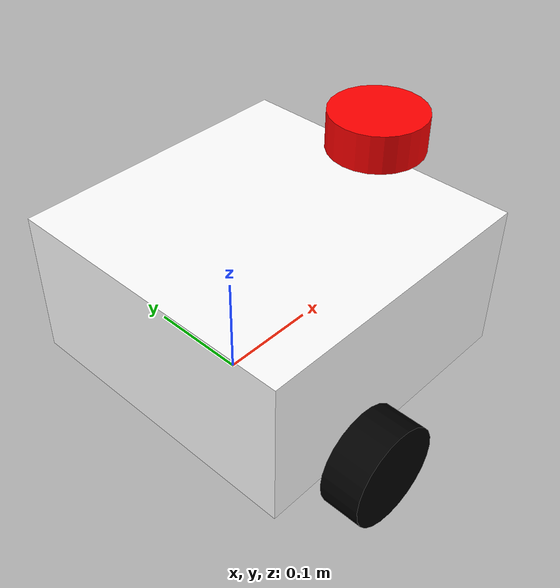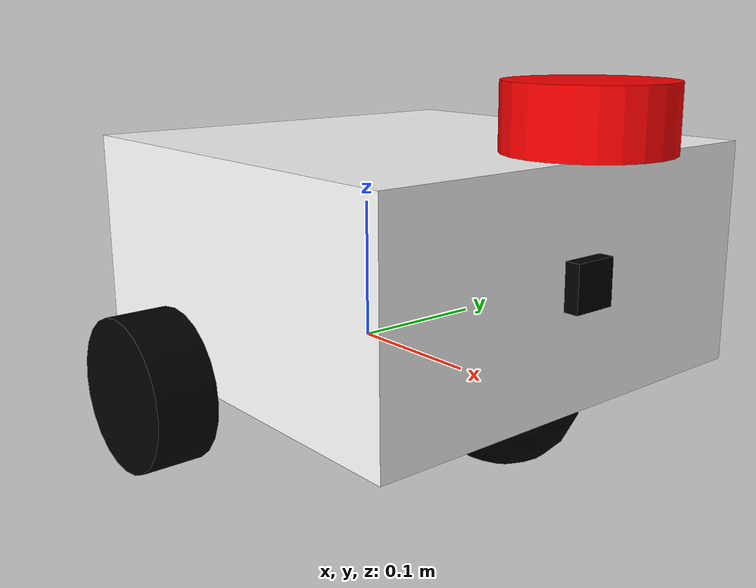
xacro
<?xml version="1.0"?>
<robot xmlns:xacro="http://www.ros.org/wiki/xacro"  name="robot">

    <xacro:include filename="robot_core.xacro"/>
    <xacro:include filename="gazebo_control.xacro"/>
    <xacro:include filename="lidar.xacro"/>
    <xacro:include filename="camera.xacro"/>
</robot>

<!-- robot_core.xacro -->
<robot xmlns:xacro="http://www.ros.org/wiki/xacro">

    <xacro:include filename="inertial_macros.xacro"/>

    <material name="white">
        <color rgba="1 1 1 1"/>
    </material>

    <material name="orange">
        <color rgba="1 0.3 0.1 1"/>
    </material>

    <material name="blue">
        <color rgba="0.2 0.2 1 1"/>
    </material>

    <material name="black">
        <color rgba="0 0 0 1"/>
    </material>

    <material name="red">
        <color rgba="1 0 0 1"/>
    </material>

    <!-- BASE LINK -->

    <link name="base_link"></link >

    <!-- CHASSIS LINK -->

    <joint name="chassis_joint" type="fixed">
        <parent link="base_link"/>
        <child link="chassis"/>
        <origin xyz="-0.1 0 0"/>
    </joint>

    <link name="chassis">
        <visual>
            <origin xyz="0.15 0 0.075" rpy="0 0 0"/>
            <geometry>
                <box size="0.3 0.3 0.15"/>
            </geometry>
            <material name="white"/>
        </visual>
        <collision>
            <origin xyz="0.15 0 0.075" rpy="0 0 0"/>
            <geometry>
                <box size="0.3 0.3 0.15"/>
            </geometry>
        </collision>
        <xacro:inertial_box mass="0.5" x="0.3" y="0.3" z="0.15">
            <origin xyz="0.15 0 0.075" rpy="0 0 0"/>
        </xacro:inertial_box>
    </link>

    <gazebo reference="chassic">
            <material>Gazebo/White</material>
    </gazebo>

    <!-- LEFT_WHEEL LINK -->

    <joint name="left_wheel_joint" type="continuous">
        <parent link="base_link"/>
        <child link="left_wheel"/>
        <origin xyz="0 0.175 0" rpy="-${pi/2} 0 0"/>
        <axis xyz="0 0 1"/>
    </joint>

    <link name="left_wheel">
        <visual>
            <geometry>
                <cylinder length="0.04" radius="0.05"/>
            </geometry>
            <material name="black"/>
        </visual>
        <collision>
            <geometry>
                <cylinder length="0.04" radius="0.05"/>
            </geometry>
        </collision>
        <xacro:inertial_cylinder mass="0.1" length="0.04" radius="0.05">
            <origin xyz="0 0 0" rpy="0 0 0"/>
        </xacro:inertial_cylinder>
    </link>

    <gazebo reference="left_wheel">
            <material>Gazebo/Black</material>
    </gazebo>

    <!-- RIGHT_WHEEL LINK -->

    <joint name="right_wheel_joint" type="continuous">
        <parent link="base_link"/>
        <child link="right_wheel"/>
        <origin xyz="0 -0.175 0" rpy="${pi/2} 0 0"/>
        <axis xyz="0 0 -1"/>
    </joint>

    <link name="right_wheel">
        <visual>
            <geometry>
                <cylinder length="0.04" radius="0.05"/>
            </geometry>
            <material name="black"/>
        </visual>
        <collision>
            <geometry>
                <cylinder length="0.04" radius="0.05"/>
            </geometry>
        </collision>
        <xacro:inertial_cylinder mass="0.1" length="0.04" radius="0.05">
            <origin xyz="0 0 0" rpy="0 0 0"/>
        </xacro:inertial_cylinder>
    </link>

    <gazebo reference="right_wheel">
        <material>Gazebo/Black</material>
    </gazebo>

    <!-- CASTER_WHEEL LINK -->

    <joint name="caster_wheel_joint" type="fixed">
        <parent link="chassis"/>
        <child link="caster_wheel"/>
        <origin xyz="0.24 0 0" rpy="0 0 0"/>
    </joint>

    <link name="caster_wheel">
        <visual>
            <geometry>
                <sphere radius="0.05"/>
            </geometry>
            <material name="black"/>
        </visual>
        <collision>
            <geometry>
                <sphere radius="0.05"/>
            </geometry>
        </collision>
        <xacro:inertial_sphere mass="0.1" radius="0.05">
            <origin xyz="0 0 0" rpy="0 0 0"/>
        </xacro:inertial_sphere>
    </link>

    <gazebo reference="caster_wheel">
        <material>Gazebo/Black</material>
        <!-- Specify frition coefficient -->
        <mu1 value="0.001"/>
        <mu2 value="0.001"/>
    </gazebo>

</robot>

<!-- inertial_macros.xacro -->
<robot xmlns:xacro="http://www.ros.org/wiki/xacro">

    <xacro:macro name="inertial_box" params="mass x y z *origin">
        <inertial>
            <xacro:insert_block name="origin"/>
            <mass value="${mass}"/>
            <inertia ixx="${(1/12) * mass * (y*y+z*z)}" ixy="0.0" ixz="0.0" iyy="${(1/12) * mass * (x*x+z*z)}" iyz="0.0" izz="${(1/12) * mass * (x*x+y*y)}"/>
        </inertial>
    </xacro:macro>

    <xacro:macro name="inertial_sphere" params="mass radius *origin">
        <inertial>
            <xacro:insert_block name="origin"/>
            <mass value="${mass}"/>
            <inertia ixx="${(2/5) * mass * (radius*radius)}" ixy="0.0" ixz="0.0" iyy="${(2/5) * mass * (radius*radius)}" iyz="0.0" izz="${(2/5) * mass * (radius*radius)}"/>
        </inertial>
    </xacro:macro>

    <xacro:macro name="inertial_cylinder" params="mass radius length *origin">
        <inertial>
            <xacro:insert_block name="origin"/>
            <mass value="${mass}"/>
            <inertia ixx="${(1/12) * mass * (3*radius*radius+length*length)}" ixy="0.0" ixz="0.0" iyy="${(1/12) * mass * (3*radius*radius+length*length)}" iyz="0.0" izz="${(1/2) * mass * (radius*radius)}"/>
        </inertial>
    </xacro:macro>

</robot>

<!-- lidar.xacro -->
<robot xmlns:xacro="http://www.ros.org/wiki/xacr0">

    <!-- LASER_FRAME LINK -->
    <joint name="laser_joint" type="fixed">
        <parent link="chassis"/>
        <child link="laser_frame"/>
        <origin xyz="0.3 0 0.175" rpy="0 0 0"/>
    </joint>

    <link name="laser_frame">
        <visual>
            <geometry>
                <cylinder length="0.04" radius="0.05"/>
            </geometry>
            <material name="red"/>
        </visual>
        <collision>
            <geometry>
                <cylinder length="0.04" radius="0.05"/>
            </geometry>
        </collision>
        <xacro:inertial_cylinder mass="0.1" length="0.04" radius="0.05">
            <origin xyz="0 0 0" rpy="0 0 0"/>
        </xacro:inertial_cylinder>
    </link>

    <gazebo reference="laser_frame">
        <material>Gazebo/Red</material>
        <sensor name="laser" type="ray">
            <pose>0 0 0 0 0 0</pose>
            <visualize>true</visualize>
            <update_rate>10</update_rate>
            <ray>
                <scan>
                    <horizontal>
                        <samples>360</samples>
                        <!-- Total laser beams = samples x resolution -->
                        <resolution>1</resolution>
                        <!-- From -180 to 180 in radian -->
                        <min_angle>-3.14</min_angle>
                        <max_angle>3.14</max_angle>
                    </horizontal>
                </scan>
                <range>
                    <min>0.3</min>
                    <max>12</max>
                    <!-- Lam tron khoang cach toi 0.1 cm -->
                    <resolution>0.01</resolution>
                </range>
            </ray>
            <plugin name="laser_controller" filename="libgazebo_ros_ray_sensor.so">
                <ros>
                    <!-- Publishing on topic /scan -->
                    <argument>~/out:=scan</argument>
                </ros>
                <!-- Publishing a LaserScan message to the topic /scan -->
                <output_type>sensor_msgs/LaserScan</output_type>
                <!-- Frame id -->
                <frame_name>laser_frame</frame_name>
            </plugin>
        </sensor>
    </gazebo>
</robot>

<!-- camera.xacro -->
<robot xmlns:xacro="http://www.ros.org/wiki/xacr0">

    <!-- CAMERA LINK -->
    <joint name="camera_joint" type="fixed">
        <parent link="chassis"/>
        <child link="camera_link"/>
        <origin xyz="0.305 0 0.08" rpy="0 0 0"/>
    </joint>

    <link name="camera_link">
        <visual>
            <geometry>
                <box size="0.01 0.03 0.03"/>
            </geometry>
            <material name="black"/>
        </visual>
    </link>

    <!-- CAMERA_LINK_OPTICAL LINK -->

    <joint name="camera_optical_joint" type="fixed">
        <parent link="camera_link"/>
        <child link="camera_link_optical"/>
        <!-- Following the standard image convention -->
        <origin xyz="0 0 0" rpy="${-pi/2} 0 ${-pi/2}"/>
    </joint>

    <link name="camera_link_optical"></link>

    <gazebo reference="camera_link">
        <material>Gazebo/Black</material>
        <sensor name="camera" type="camera">
            <pose>0 0 0 0 0 0</pose>
            <visualize>true</visualize>
            <update_rate>10</update_rate>
            <camera>
                <!-- This determines how zoomed in or zoomed out the picture (horizontal_fov is in radians)-->
                <horizontal_fov>1.089</horizontal_fov>
                <image>
                    <format>R8G8B8</format>
                    <width>640</width>
                    <height>480</height>
                </image>
                <clip>
                    <!-- This sort of sets a minimum and maximum range -->
                    <near>0.05</near>
                    <far>8.0</far>
                </clip>
            </camera>
            <plugin name="camera_controller" filename="libgazebo_ros_camera.so">
                <frame_name>camera_link_optical</frame_name>
            </plugin>
        </sensor>
    </gazebo>
</robot>
